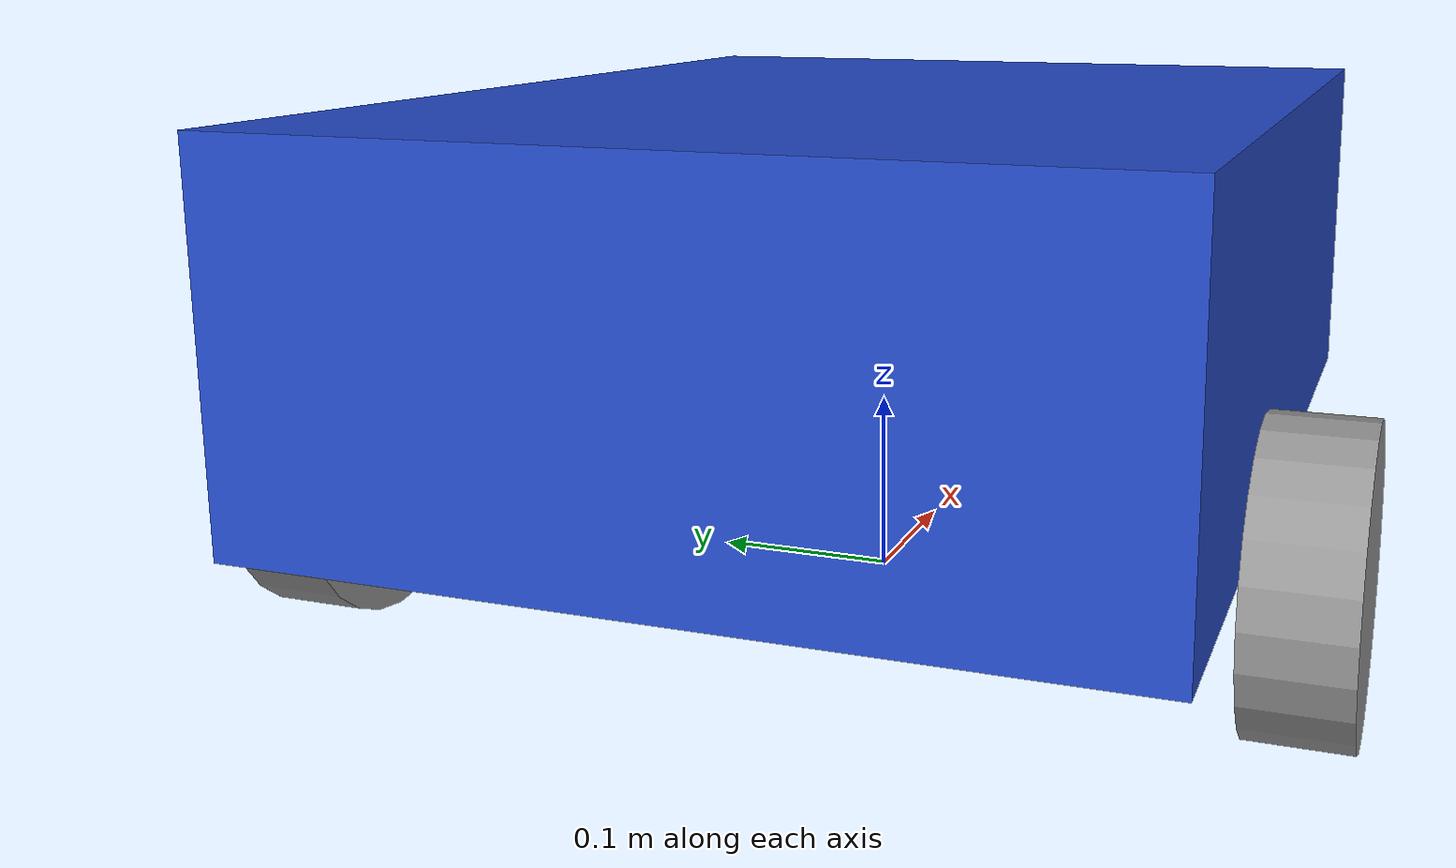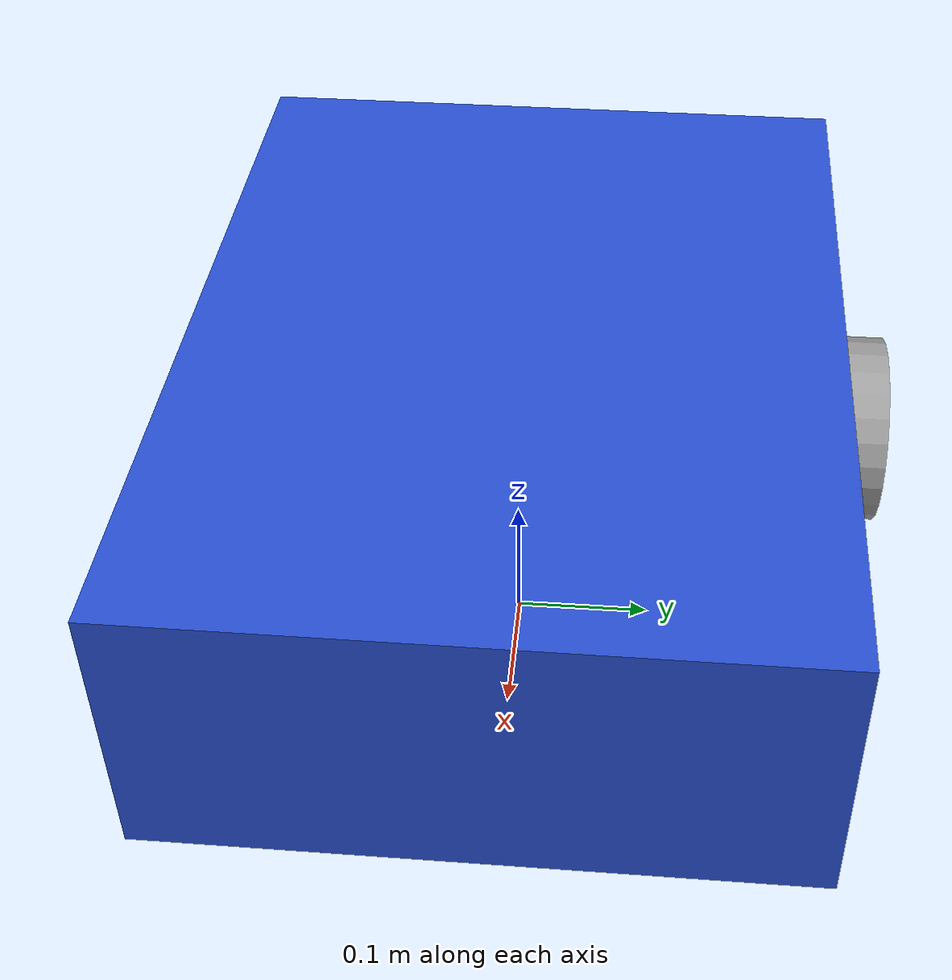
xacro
<?xml version="1.0"?>
<robot xmlns:xacro="http://www.ros.org/wiki/xacro" name="mobile_base">

  <!-- Base geometry (edit if your real chassis is different) -->
  <xacro:property name="base_length" value="0.6" />
  <xacro:property name="base_width"  value="0.45" />
  <xacro:property name="base_height" value="0.2" />

  <!-- REAL HARDWARE VALUES -->
  <xacro:property name="wheel_radius"     value="0.07490" />
  <xacro:property name="wheel_separation" value="0.512" />

  <!-- Visual wheel thickness (does not affect kinematics) -->
  <xacro:property name="wheel_length" value="0.05" />

  <!-- Frames -->
  <link name="base_footprint" />

  <link name="base_link">
    <visual>
      <geometry>
        <box size="${base_length} ${base_width} ${base_height}" />
      </geometry>
      <origin xyz="0 0 ${base_height / 2.0}" rpy="0 0 0" />
      <material name="blue" />
    </visual>
  </link>

  <!-- Wheel link macro -->
  <xacro:macro name="wheel_link" params="prefix">
    <link name="${prefix}_wheel_link">
      <visual>
        <geometry>
          <cylinder radius="${wheel_radius}" length="${wheel_length}" />
        </geometry>
        <!-- Cylinder axis is Z by default; rotate so it spins about Y -->
        <origin xyz="0 0 0" rpy="${pi / 2.0} 0 0" />
        <material name="grey" />
      </visual>
    </link>
  </xacro:macro>

  <xacro:wheel_link prefix="right" />
  <xacro:wheel_link prefix="left" />

  <!-- Simple caster (visual only) -->
  <link name="caster_wheel_link">
    <visual>
      <geometry>
        <sphere radius="${wheel_radius / 2.0}" />
      </geometry>
      <origin xyz="0 0 0" rpy="0 0 0" />
      <material name="grey" />
    </visual>
  </link>

  <!-- base_footprint -> base_link at wheel radius height -->
  <joint name="base_joint" type="fixed">
    <parent link="base_footprint" />
    <child link="base_link" />
    <origin xyz="0 0 ${wheel_radius}" rpy="0 0 0" />
  </joint>

  <!-- Wheels placed at +/- wheel_separation/2 -->
  <joint name="base_right_wheel_joint" type="continuous">
    <parent link="base_link" />
    <child link="right_wheel_link" />
    <origin xyz="${-base_length / 4.0} ${-wheel_separation / 2.0} 0" rpy="0 0 0" />
    <axis xyz="0 1 0" />
  </joint>

  <joint name="base_left_wheel_joint" type="continuous">
    <parent link="base_link" />
    <child link="left_wheel_link" />
    <origin xyz="${-base_length / 4.0} ${wheel_separation / 2.0} 0" rpy="0 0 0" />
    <axis xyz="0 1 0" />
  </joint>

  <!-- Caster location (visual only) -->
  <joint name="base_caster_wheel_joint" type="fixed">
    <parent link="base_link" />
    <child link="caster_wheel_link" />
    <origin xyz="${base_length / 3.0} 0 ${-wheel_radius / 2.0}" rpy="0 0 0" />
  </joint>

</robot>
